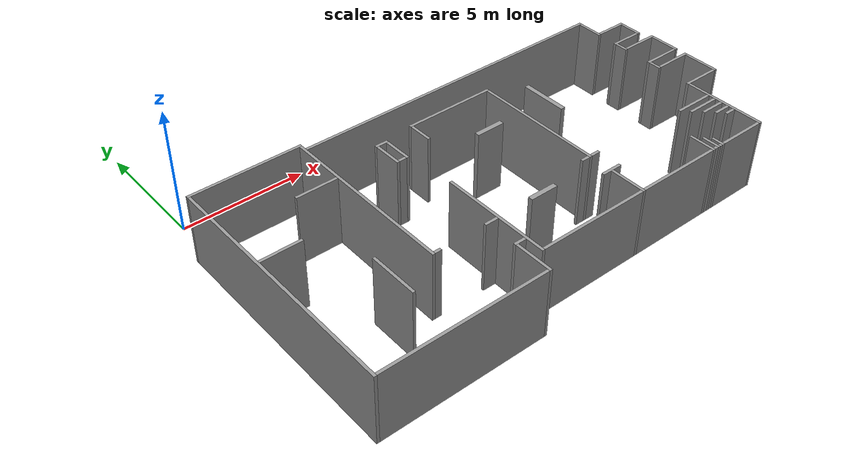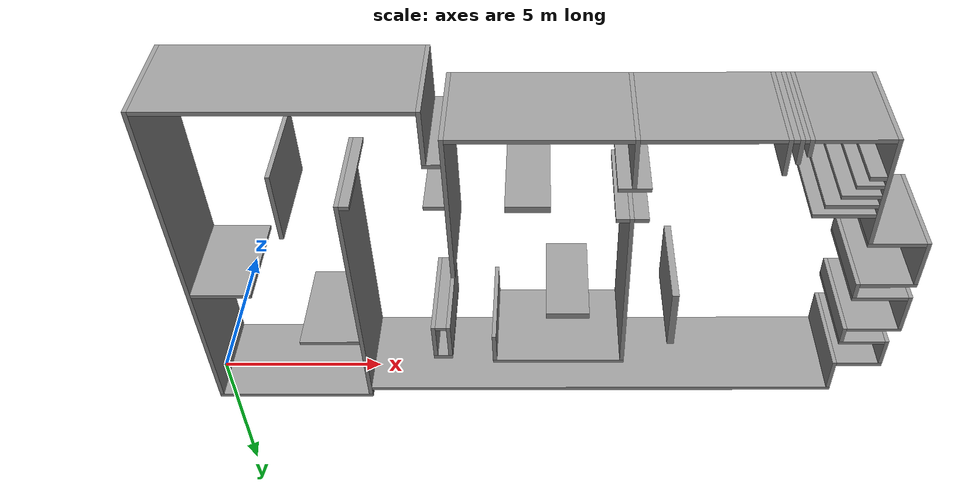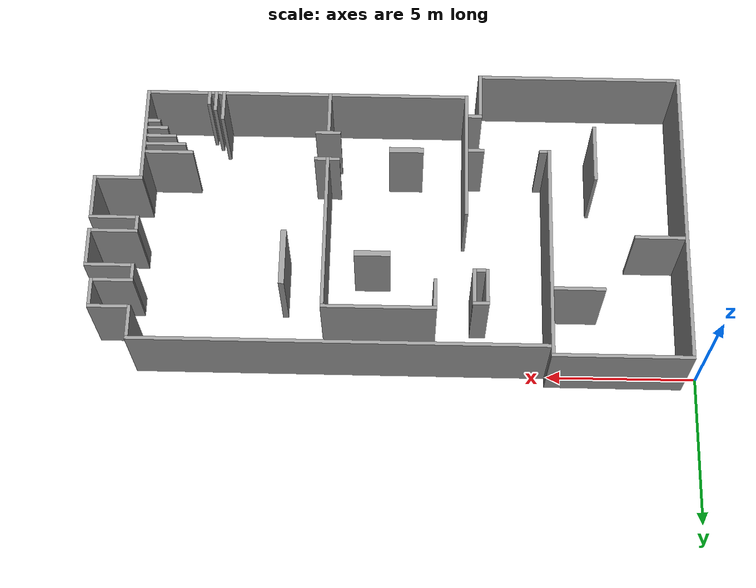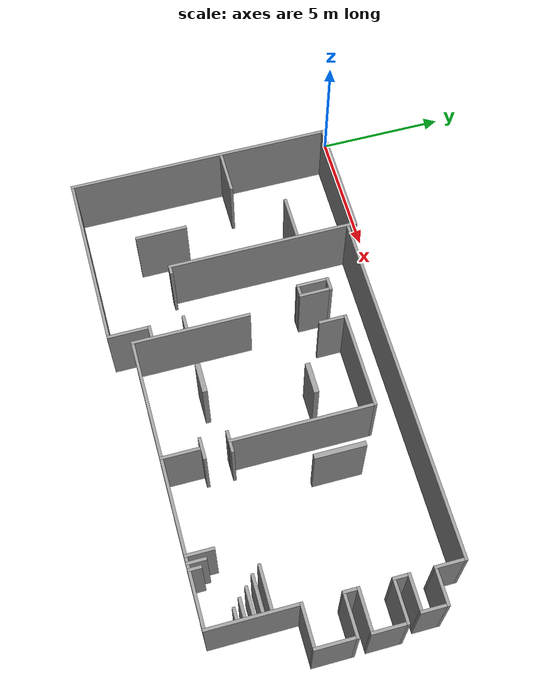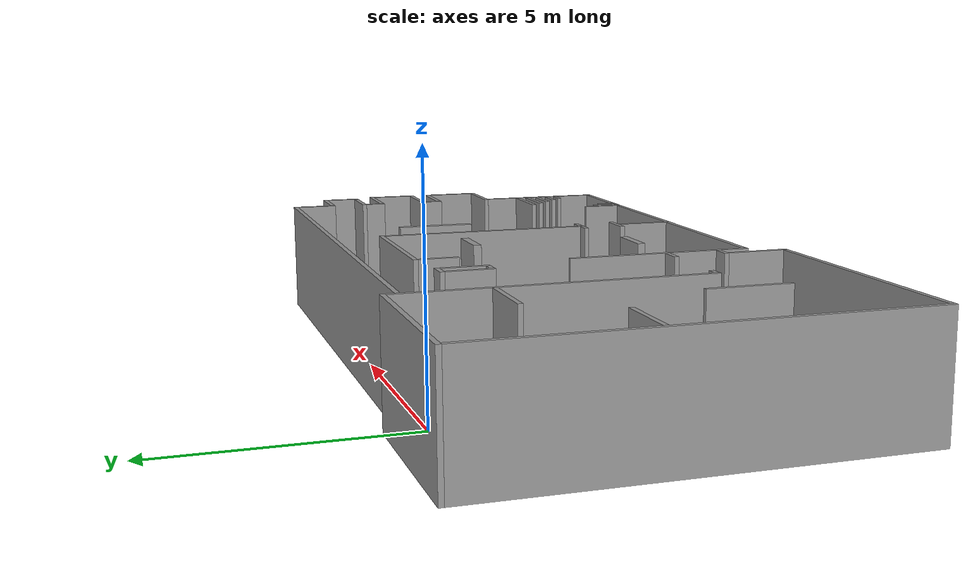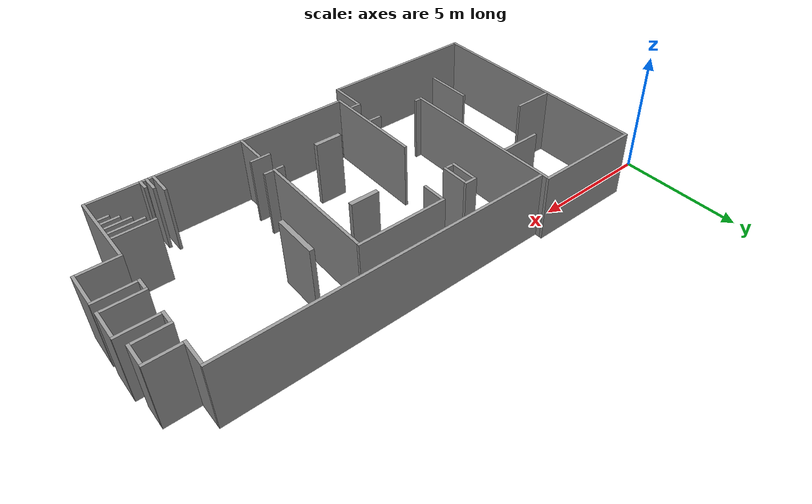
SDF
<?xml version="1.0" ?>
<sdf version="1.4">
  <model name="TestingRoom">
    <static>1</static>
    <link name="Wall_0">
      <collision name="Wall_0_Collision">
        <geometry>
          <box>
            <size>4.76000 0.12000 3.00000</size>
          </box>
        </geometry>
        <pose>2.58000 -0.26000 0 0 0 0.00000</pose>
      </collision>
      <visual name="Wall_0_Visual">
        <geometry>
          <box>
            <size>4.76000 0.12000 3.00000</size>
          </box>
        </geometry>
        <material>
          <script>
            <uri>file://media/materials/scripts/gazebo.material</uri>
            <name>Gazebo/Grey</name>
          </script>
        </material>
        <pose>2.58000 -0.26000 0 0 0 0.00000</pose>
      </visual>
    </link>
    <link name="Wall_1">
      <collision name="Wall_1_Collision">
        <geometry>
          <box>
            <size>0.12000 10.56000 3.00000</size>
          </box>
        </geometry>
        <pose>0.26000 -5.60000 0 0 0 0.00000</pose>
      </collision>
      <visual name="Wall_1_Visual">
        <geometry>
          <box>
            <size>0.12000 10.56000 3.00000</size>
          </box>
        </geometry>
        <material>
          <script>
            <uri>file://media/materials/scripts/gazebo.material</uri>
            <name>Gazebo/Grey</name>
          </script>
        </material>
        <pose>0.26000 -5.60000 0 0 0 0.00000</pose>
      </visual>
    </link>
    <link name="Wall_2">
      <collision name="Wall_2_Collision">
        <geometry>
          <box>
            <size>0.12000 7.60000 3.00000</size>
          </box>
        </geometry>
        <pose>4.90000 -4.12000 0 0 0 0.00000</pose>
      </collision>
      <visual name="Wall_2_Visual">
        <geometry>
          <box>
            <size>0.12000 7.60000 3.00000</size>
          </box>
        </geometry>
        <material>
          <script>
            <uri>file://media/materials/scripts/gazebo.material</uri>
            <name>Gazebo/Grey</name>
          </script>
        </material>
        <pose>4.90000 -4.12000 0 0 0 0.00000</pose>
      </visual>
    </link>
    <link name="Wall_3">
      <collision name="Wall_3_Collision">
        <geometry>
          <box>
            <size>14.16000 0.12000 3.00000</size>
          </box>
        </geometry>
        <pose>12.04000 -0.58000 0 0 0 0.00000</pose>
      </collision>
      <visual name="Wall_3_Visual">
        <geometry>
          <box>
            <size>14.16000 0.12000 3.00000</size>
          </box>
        </geometry>
        <material>
          <script>
            <uri>file://media/materials/scripts/gazebo.material</uri>
            <name>Gazebo/Grey</name>
          </script>
        </material>
        <pose>12.04000 -0.58000 0 0 0 0.00000</pose>
      </visual>
    </link>
    <link name="Wall_4">
      <collision name="Wall_4_Collision">
        <geometry>
          <box>
            <size>0.12000 1.12000 3.00000</size>
          </box>
        </geometry>
        <pose>19.06000 -1.20000 0 0 0 0.00000</pose>
      </collision>
      <visual name="Wall_4_Visual">
        <geometry>
          <box>
            <size>0.12000 1.12000 3.00000</size>
          </box>
        </geometry>
        <material>
          <script>
            <uri>file://media/materials/scripts/gazebo.material</uri>
            <name>Gazebo/Grey</name>
          </script>
        </material>
        <pose>19.06000 -1.20000 0 0 0 0.00000</pose>
      </visual>
    </link>
    <link name="Wall_5">
      <collision name="Wall_5_Collision">
        <geometry>
          <box>
            <size>1.36000 0.12000 3.00000</size>
          </box>
        </geometry>
        <pose>19.80000 -1.70000 0 0 0 0.00000</pose>
      </collision>
      <visual name="Wall_5_Visual">
        <geometry>
          <box>
            <size>1.36000 0.12000 3.00000</size>
          </box>
        </geometry>
        <material>
          <script>
            <uri>file://media/materials/scripts/gazebo.material</uri>
            <name>Gazebo/Grey</name>
          </script>
        </material>
        <pose>19.80000 -1.70000 0 0 0 0.00000</pose>
      </visual>
    </link>
    <link name="Wall_6">
      <collision name="Wall_6_Collision">
        <geometry>
          <box>
            <size>0.12000 0.96000 3.00000</size>
          </box>
        </geometry>
        <pose>20.42000 -2.24000 0 0 0 0.00000</pose>
      </collision>
      <visual name="Wall_6_Visual">
        <geometry>
          <box>
            <size>0.12000 0.96000 3.00000</size>
          </box>
        </geometry>
        <material>
          <script>
            <uri>file://media/materials/scripts/gazebo.material</uri>
            <name>Gazebo/Grey</name>
          </script>
        </material>
        <pose>20.42000 -2.24000 0 0 0 0.00000</pose>
      </visual>
    </link>
    <link name="Wall_7">
      <collision name="Wall_7_Collision">
        <geometry>
          <box>
            <size>3.92000 0.12000 3.00000</size>
          </box>
        </geometry>
        <pose>10.72000 -1.86000 0 0 0 0.00000</pose>
      </collision>
      <visual name="Wall_7_Visual">
        <geometry>
          <box>
            <size>3.92000 0.12000 3.00000</size>
          </box>
        </geometry>
        <material>
          <script>
            <uri>file://media/materials/scripts/gazebo.material</uri>
            <name>Gazebo/Grey</name>
          </script>
        </material>
        <pose>10.72000 -1.86000 0 0 0 0.00000</pose>
      </visual>
    </link>
    <link name="Wall_8">
      <collision name="Wall_8_Collision">
        <geometry>
          <box>
            <size>0.12000 1.00000 3.00000</size>
          </box>
        </geometry>
        <pose>8.82000 -2.42000 0 0 0 0.00000</pose>
      </collision>
      <visual name="Wall_8_Visual">
        <geometry>
          <box>
            <size>0.12000 1.00000 3.00000</size>
          </box>
        </geometry>
        <material>
          <script>
            <uri>file://media/materials/scripts/gazebo.material</uri>
            <name>Gazebo/Grey</name>
          </script>
        </material>
        <pose>8.82000 -2.42000 0 0 0 0.00000</pose>
      </visual>
    </link>
    <link name="Wall_9">
      <collision name="Wall_9_Collision">
        <geometry>
          <box>
            <size>0.12000 5.56000 3.00000</size>
          </box>
        </geometry>
        <pose>12.62000 -4.70000 0 0 0 0.00000</pose>
      </collision>
      <visual name="Wall_9_Visual">
        <geometry>
          <box>
            <size>0.12000 5.56000 3.00000</size>
          </box>
        </geometry>
        <material>
          <script>
            <uri>file://media/materials/scripts/gazebo.material</uri>
            <name>Gazebo/Grey</name>
          </script>
        </material>
        <pose>12.62000 -4.70000 0 0 0 0.00000</pose>
      </visual>
    </link>
    <link name="Wall_10">
      <collision name="Wall_10_Collision">
        <geometry>
          <box>
            <size>0.56000 0.12000 3.00000</size>
          </box>
        </geometry>
        <pose>7.28000 -2.06000 0 0 0 0.00000</pose>
      </collision>
      <visual name="Wall_10_Visual">
        <geometry>
          <box>
            <size>0.56000 0.12000 3.00000</size>
          </box>
        </geometry>
        <material>
          <script>
            <uri>file://media/materials/scripts/gazebo.material</uri>
            <name>Gazebo/Grey</name>
          </script>
        </material>
        <pose>7.28000 -2.06000 0 0 0 0.00000</pose>
      </visual>
    </link>
    <link name="Wall_11">
      <collision name="Wall_11_Collision">
        <geometry>
          <box>
            <size>0.12000 1.20000 3.00000</size>
          </box>
        </geometry>
        <pose>7.06000 -2.72000 0 0 0 0.00000</pose>
      </collision>
      <visual name="Wall_11_Visual">
        <geometry>
          <box>
            <size>0.12000 1.20000 3.00000</size>
          </box>
        </geometry>
        <material>
          <script>
            <uri>file://media/materials/scripts/gazebo.material</uri>
            <name>Gazebo/Grey</name>
          </script>
        </material>
        <pose>7.06000 -2.72000 0 0 0 0.00000</pose>
      </visual>
    </link>
    <link name="Wall_12">
      <collision name="Wall_12_Collision">
        <geometry>
          <box>
            <size>0.12000 1.20000 3.00000</size>
          </box>
        </geometry>
        <pose>7.50000 -2.72000 0 0 0 0.00000</pose>
      </collision>
      <visual name="Wall_12_Visual">
        <geometry>
          <box>
            <size>0.12000 1.20000 3.00000</size>
          </box>
        </geometry>
        <material>
          <script>
            <uri>file://media/materials/scripts/gazebo.material</uri>
            <name>Gazebo/Grey</name>
          </script>
        </material>
        <pose>7.50000 -2.72000 0 0 0 0.00000</pose>
      </visual>
    </link>
    <link name="Wall_13">
      <collision name="Wall_13_Collision">
        <geometry>
          <box>
            <size>1.76000 0.12000 3.00000</size>
          </box>
        </geometry>
        <pose>3.96000 -2.66000 0 0 0 0.00000</pose>
      </collision>
      <visual name="Wall_13_Visual">
        <geometry>
          <box>
            <size>1.76000 0.12000 3.00000</size>
          </box>
        </geometry>
        <material>
          <script>
            <uri>file://media/materials/scripts/gazebo.material</uri>
            <name>Gazebo/Grey</name>
          </script>
        </material>
        <pose>3.96000 -2.66000 0 0 0 0.00000</pose>
      </visual>
    </link>
    <link name="Wall_14">
      <collision name="Wall_14_Collision">
        <geometry>
          <box>
            <size>1.36000 0.12000 3.00000</size>
          </box>
        </geometry>
        <pose>19.68000 -2.66000 0 0 0 0.00000</pose>
      </collision>
      <visual name="Wall_14_Visual">
        <geometry>
          <box>
            <size>1.36000 0.12000 3.00000</size>
          </box>
        </geometry>
        <material>
          <script>
            <uri>file://media/materials/scripts/gazebo.material</uri>
            <name>Gazebo/Grey</name>
          </script>
        </material>
        <pose>19.68000 -2.66000 0 0 0 0.00000</pose>
      </visual>
    </link>
    <link name="Wall_15">
      <collision name="Wall_15_Collision">
        <geometry>
          <box>
            <size>0.20000 2.00000 3.00000</size>
          </box>
        </geometry>
        <pose>14.02000 -3.64000 0 0 0 0.00000</pose>
      </collision>
      <visual name="Wall_15_Visual">
        <geometry>
          <box>
            <size>0.20000 2.00000 3.00000</size>
          </box>
        </geometry>
        <material>
          <script>
            <uri>file://media/materials/scripts/gazebo.material</uri>
            <name>Gazebo/Grey</name>
          </script>
        </material>
        <pose>14.02000 -3.64000 0 0 0 0.00000</pose>
      </visual>
    </link>
    <link name="Wall_16">
      <collision name="Wall_16_Collision">
        <geometry>
          <box>
            <size>0.12000 0.56000 3.00000</size>
          </box>
        </geometry>
        <pose>19.06000 -3.00000 0 0 0 0.00000</pose>
      </collision>
      <visual name="Wall_16_Visual">
        <geometry>
          <box>
            <size>0.12000 0.56000 3.00000</size>
          </box>
        </geometry>
        <material>
          <script>
            <uri>file://media/materials/scripts/gazebo.material</uri>
            <name>Gazebo/Grey</name>
          </script>
        </material>
        <pose>19.06000 -3.00000 0 0 0 0.00000</pose>
      </visual>
    </link>
    <link name="Wall_17">
      <collision name="Wall_17_Collision">
        <geometry>
          <box>
            <size>1.60000 0.12000 3.00000</size>
          </box>
        </geometry>
        <pose>19.92000 -3.22000 0 0 0 0.00000</pose>
      </collision>
      <visual name="Wall_17_Visual">
        <geometry>
          <box>
            <size>1.60000 0.12000 3.00000</size>
          </box>
        </geometry>
        <material>
          <script>
            <uri>file://media/materials/scripts/gazebo.material</uri>
            <name>Gazebo/Grey</name>
          </script>
        </material>
        <pose>19.92000 -3.22000 0 0 0 0.00000</pose>
      </visual>
    </link>
    <link name="Wall_18">
      <collision name="Wall_18_Collision">
        <geometry>
          <box>
            <size>0.32000 0.12000 3.00000</size>
          </box>
        </geometry>
        <pose>7.28000 -3.26000 0 0 0 0.00000</pose>
      </collision>
      <visual name="Wall_18_Visual">
        <geometry>
          <box>
            <size>0.32000 0.12000 3.00000</size>
          </box>
        </geometry>
        <material>
          <script>
            <uri>file://media/materials/scripts/gazebo.material</uri>
            <name>Gazebo/Grey</name>
          </script>
        </material>
        <pose>7.28000 -3.26000 0 0 0 0.00000</pose>
      </visual>
    </link>
    <link name="Wall_19">
      <collision name="Wall_19_Collision">
        <geometry>
          <box>
            <size>0.12000 1.28000 3.00000</size>
          </box>
        </geometry>
        <pose>20.66000 -3.92000 0 0 0 0.00000</pose>
      </collision>
      <visual name="Wall_19_Visual">
        <geometry>
          <box>
            <size>0.12000 1.28000 3.00000</size>
          </box>
        </geometry>
        <material>
          <script>
            <uri>file://media/materials/scripts/gazebo.material</uri>
            <name>Gazebo/Grey</name>
          </script>
        </material>
        <pose>20.66000 -3.92000 0 0 0 0.00000</pose>
      </visual>
    </link>
    <link name="Wall_20">
      <collision name="Wall_20_Collision">
        <geometry>
          <box>
            <size>1.24000 0.20000 3.00000</size>
          </box>
        </geometry>
        <pose>10.98000 -3.82000 0 0 0 0.00000</pose>
      </collision>
      <visual name="Wall_20_Visual">
        <geometry>
          <box>
            <size>1.24000 0.20000 3.00000</size>
          </box>
        </geometry>
        <material>
          <script>
            <uri>file://media/materials/scripts/gazebo.material</uri>
            <name>Gazebo/Grey</name>
          </script>
        </material>
        <pose>10.98000 -3.82000 0 0 0 0.00000</pose>
      </visual>
    </link>
    <link name="Wall_21">
      <collision name="Wall_21_Collision">
        <geometry>
          <box>
            <size>1.60000 0.12000 3.00000</size>
          </box>
        </geometry>
        <pose>19.80000 -4.50000 0 0 0 0.00000</pose>
      </collision>
      <visual name="Wall_21_Visual">
        <geometry>
          <box>
            <size>1.60000 0.12000 3.00000</size>
          </box>
        </geometry>
        <material>
          <script>
            <uri>file://media/materials/scripts/gazebo.material</uri>
            <name>Gazebo/Grey</name>
          </script>
        </material>
        <pose>19.80000 -4.50000 0 0 0 0.00000</pose>
      </visual>
    </link>
    <link name="Wall_22">
      <collision name="Wall_22_Collision">
        <geometry>
          <box>
            <size>1.72000 0.12000 3.00000</size>
          </box>
        </geometry>
        <pose>1.18000 -4.62000 0 0 0 0.00000</pose>
      </collision>
      <visual name="Wall_22_Visual">
        <geometry>
          <box>
            <size>1.72000 0.12000 3.00000</size>
          </box>
        </geometry>
        <material>
          <script>
            <uri>file://media/materials/scripts/gazebo.material</uri>
            <name>Gazebo/Grey</name>
          </script>
        </material>
        <pose>1.18000 -4.62000 0 0 0 0.00000</pose>
      </visual>
    </link>
    <link name="Wall_23">
      <collision name="Wall_23_Collision">
        <geometry>
          <box>
            <size>0.12000 0.52000 3.00000</size>
          </box>
        </geometry>
        <pose>19.06000 -4.82000 0 0 0 0.00000</pose>
      </collision>
      <visual name="Wall_23_Visual">
        <geometry>
          <box>
            <size>0.12000 0.52000 3.00000</size>
          </box>
        </geometry>
        <material>
          <script>
            <uri>file://media/materials/scripts/gazebo.material</uri>
            <name>Gazebo/Grey</name>
          </script>
        </material>
        <pose>19.06000 -4.82000 0 0 0 0.00000</pose>
      </visual>
    </link>
    <link name="Wall_24">
      <collision name="Wall_24_Collision">
        <geometry>
          <box>
            <size>1.60000 0.12000 3.00000</size>
          </box>
        </geometry>
        <pose>19.92000 -5.02000 0 0 0 0.00000</pose>
      </collision>
      <visual name="Wall_24_Visual">
        <geometry>
          <box>
            <size>1.60000 0.12000 3.00000</size>
          </box>
        </geometry>
        <material>
          <script>
            <uri>file://media/materials/scripts/gazebo.material</uri>
            <name>Gazebo/Grey</name>
          </script>
        </material>
        <pose>19.92000 -5.02000 0 0 0 0.00000</pose>
      </visual>
    </link>
    <link name="Wall_25">
      <collision name="Wall_25_Collision">
        <geometry>
          <box>
            <size>0.12000 1.52000 3.00000</size>
          </box>
        </geometry>
        <pose>20.66000 -5.84000 0 0 0 0.00000</pose>
      </collision>
      <visual name="Wall_25_Visual">
        <geometry>
          <box>
            <size>0.12000 1.52000 3.00000</size>
          </box>
        </geometry>
        <material>
          <script>
            <uri>file://media/materials/scripts/gazebo.material</uri>
            <name>Gazebo/Grey</name>
          </script>
        </material>
        <pose>20.66000 -5.84000 0 0 0 0.00000</pose>
      </visual>
    </link>
    <link name="Wall_26">
      <collision name="Wall_26_Collision">
        <geometry>
          <box>
            <size>0.12000 4.68000 3.00000</size>
          </box>
        </geometry>
        <pose>7.78000 -7.70000 0 0 0 0.00000</pose>
      </collision>
      <visual name="Wall_26_Visual">
        <geometry>
          <box>
            <size>0.12000 4.68000 3.00000</size>
          </box>
        </geometry>
        <material>
          <script>
            <uri>file://media/materials/scripts/gazebo.material</uri>
            <name>Gazebo/Grey</name>
          </script>
        </material>
        <pose>7.78000 -7.70000 0 0 0 0.00000</pose>
      </visual>
    </link>
    <link name="Wall_27">
      <collision name="Wall_27_Collision">
        <geometry>
          <box>
            <size>1.60000 0.12000 3.00000</size>
          </box>
        </geometry>
        <pose>19.80000 -6.54000 0 0 0 0.00000</pose>
      </collision>
      <visual name="Wall_27_Visual">
        <geometry>
          <box>
            <size>1.60000 0.12000 3.00000</size>
          </box>
        </geometry>
        <material>
          <script>
            <uri>file://media/materials/scripts/gazebo.material</uri>
            <name>Gazebo/Grey</name>
          </script>
        </material>
        <pose>19.80000 -6.54000 0 0 0 0.00000</pose>
      </visual>
    </link>
    <link name="Wall_28">
      <collision name="Wall_28_Collision">
        <geometry>
          <box>
            <size>0.12000 3.44000 3.00000</size>
          </box>
        </geometry>
        <pose>19.06000 -8.32000 0 0 0 0.00000</pose>
      </collision>
      <visual name="Wall_28_Visual">
        <geometry>
          <box>
            <size>0.12000 3.44000 3.00000</size>
          </box>
        </geometry>
        <material>
          <script>
            <uri>file://media/materials/scripts/gazebo.material</uri>
            <name>Gazebo/Grey</name>
          </script>
        </material>
        <pose>19.06000 -8.32000 0 0 0 0.00000</pose>
      </visual>
    </link>
    <link name="Wall_29">
      <collision name="Wall_29_Collision">
        <geometry>
          <box>
            <size>0.12000 2.08000 3.00000</size>
          </box>
        </geometry>
        <pose>3.30000 -7.84000 0 0 0 0.00000</pose>
      </collision>
      <visual name="Wall_29_Visual">
        <geometry>
          <box>
            <size>0.12000 2.08000 3.00000</size>
          </box>
        </geometry>
        <material>
          <script>
            <uri>file://media/materials/scripts/gazebo.material</uri>
            <name>Gazebo/Grey</name>
          </script>
        </material>
        <pose>3.30000 -7.84000 0 0 0 0.00000</pose>
      </visual>
    </link>
    <link name="Wall_30">
      <collision name="Wall_30_Collision">
        <geometry>
          <box>
            <size>0.36000 0.12000 3.00000</size>
          </box>
        </geometry>
        <pose>12.38000 -7.42000 0 0 0 0.00000</pose>
      </collision>
      <visual name="Wall_30_Visual">
        <geometry>
          <box>
            <size>0.36000 0.12000 3.00000</size>
          </box>
        </geometry>
        <material>
          <script>
            <uri>file://media/materials/scripts/gazebo.material</uri>
            <name>Gazebo/Grey</name>
          </script>
        </material>
        <pose>12.38000 -7.42000 0 0 0 0.00000</pose>
      </visual>
    </link>
    <link name="Wall_31">
      <collision name="Wall_31_Collision">
        <geometry>
          <box>
            <size>0.40000 0.12000 3.00000</size>
          </box>
        </geometry>
        <pose>12.88000 -7.42000 0 0 0 0.00000</pose>
      </collision>
      <visual name="Wall_31_Visual">
        <geometry>
          <box>
            <size>0.40000 0.12000 3.00000</size>
          </box>
        </geometry>
        <material>
          <script>
            <uri>file://media/materials/scripts/gazebo.material</uri>
            <name>Gazebo/Grey</name>
          </script>
        </material>
        <pose>12.88000 -7.42000 0 0 0 0.00000</pose>
      </visual>
    </link>
    <link name="Wall_32">
      <collision name="Wall_32_Collision">
        <geometry>
          <box>
            <size>1.68000 0.12000 3.00000</size>
          </box>
        </geometry>
        <pose>18.16000 -7.58000 0 0 0 0.00000</pose>
      </collision>
      <visual name="Wall_32_Visual">
        <geometry>
          <box>
            <size>1.68000 0.12000 3.00000</size>
          </box>
        </geometry>
        <material>
          <script>
            <uri>file://media/materials/scripts/gazebo.material</uri>
            <name>Gazebo/Grey</name>
          </script>
        </material>
        <pose>18.16000 -7.58000 0 0 0 0.00000</pose>
      </visual>
    </link>
    <link name="Wall_33">
      <collision name="Wall_33_Collision">
        <geometry>
          <box>
            <size>1.20000 0.20000 3.00000</size>
          </box>
        </geometry>
        <pose>9.88000 -7.82000 0 0 0 0.00000</pose>
      </collision>
      <visual name="Wall_33_Visual">
        <geometry>
          <box>
            <size>1.20000 0.20000 3.00000</size>
          </box>
        </geometry>
        <material>
          <script>
            <uri>file://media/materials/scripts/gazebo.material</uri>
            <name>Gazebo/Grey</name>
          </script>
        </material>
        <pose>9.88000 -7.82000 0 0 0 0.00000</pose>
      </visual>
    </link>
    <link name="Wall_34">
      <collision name="Wall_34_Collision">
        <geometry>
          <box>
            <size>0.28000 0.12000 3.00000</size>
          </box>
        </geometry>
        <pose>5.10000 -7.86000 0 0 0 0.00000</pose>
      </collision>
      <visual name="Wall_34_Visual">
        <geometry>
          <box>
            <size>0.28000 0.12000 3.00000</size>
          </box>
        </geometry>
        <material>
          <script>
            <uri>file://media/materials/scripts/gazebo.material</uri>
            <name>Gazebo/Grey</name>
          </script>
        </material>
        <pose>5.10000 -7.86000 0 0 0 0.00000</pose>
      </visual>
    </link>
    <link name="Wall_35">
      <collision name="Wall_35_Collision">
        <geometry>
          <box>
            <size>0.56000 0.12000 3.00000</size>
          </box>
        </geometry>
        <pose>7.44000 -7.86000 0 0 0 0.00000</pose>
      </collision>
      <visual name="Wall_35_Visual">
        <geometry>
          <box>
            <size>0.56000 0.12000 3.00000</size>
          </box>
        </geometry>
        <material>
          <script>
            <uri>file://media/materials/scripts/gazebo.material</uri>
            <name>Gazebo/Grey</name>
          </script>
        </material>
        <pose>7.44000 -7.86000 0 0 0 0.00000</pose>
      </visual>
    </link>
    <link name="Wall_36">
      <collision name="Wall_36_Collision">
        <geometry>
          <box>
            <size>1.40000 0.12000 3.00000</size>
          </box>
        </geometry>
        <pose>18.30000 -7.90000 0 0 0 0.00000</pose>
      </collision>
      <visual name="Wall_36_Visual">
        <geometry>
          <box>
            <size>1.40000 0.12000 3.00000</size>
          </box>
        </geometry>
        <material>
          <script>
            <uri>file://media/materials/scripts/gazebo.material</uri>
            <name>Gazebo/Grey</name>
          </script>
        </material>
        <pose>18.30000 -7.90000 0 0 0 0.00000</pose>
      </visual>
    </link>
    <link name="Wall_37">
      <collision name="Wall_37_Collision">
        <geometry>
          <box>
            <size>1.04000 0.12000 3.00000</size>
          </box>
        </geometry>
        <pose>18.48000 -8.22000 0 0 0 0.00000</pose>
      </collision>
      <visual name="Wall_37_Visual">
        <geometry>
          <box>
            <size>1.04000 0.12000 3.00000</size>
          </box>
        </geometry>
        <material>
          <script>
            <uri>file://media/materials/scripts/gazebo.material</uri>
            <name>Gazebo/Grey</name>
          </script>
        </material>
        <pose>18.48000 -8.22000 0 0 0 0.00000</pose>
      </visual>
    </link>
    <link name="Wall_38">
      <collision name="Wall_38_Collision">
        <geometry>
          <box>
            <size>0.88000 0.12000 3.00000</size>
          </box>
        </geometry>
        <pose>12.64000 -8.46000 0 0 0 0.00000</pose>
      </collision>
      <visual name="Wall_38_Visual">
        <geometry>
          <box>
            <size>0.88000 0.12000 3.00000</size>
          </box>
        </geometry>
        <material>
          <script>
            <uri>file://media/materials/scripts/gazebo.material</uri>
            <name>Gazebo/Grey</name>
          </script>
        </material>
        <pose>12.64000 -8.46000 0 0 0 0.00000</pose>
      </visual>
    </link>
    <link name="Wall_39">
      <collision name="Wall_39_Collision">
        <geometry>
          <box>
            <size>0.72000 0.12000 3.00000</size>
          </box>
        </geometry>
        <pose>18.64000 -8.54000 0 0 0 0.00000</pose>
      </collision>
      <visual name="Wall_39_Visual">
        <geometry>
          <box>
            <size>0.72000 0.12000 3.00000</size>
          </box>
        </geometry>
        <material>
          <script>
            <uri>file://media/materials/scripts/gazebo.material</uri>
            <name>Gazebo/Grey</name>
          </script>
        </material>
        <pose>18.64000 -8.54000 0 0 0 0.00000</pose>
      </visual>
    </link>
    <link name="Wall_40">
      <collision name="Wall_40_Collision">
        <geometry>
          <box>
            <size>0.12000 1.52000 3.00000</size>
          </box>
        </geometry>
        <pose>12.62000 -9.28000 0 0 0 0.00000</pose>
      </collision>
      <visual name="Wall_40_Visual">
        <geometry>
          <box>
            <size>0.12000 1.52000 3.00000</size>
          </box>
        </geometry>
        <material>
          <script>
            <uri>file://media/materials/scripts/gazebo.material</uri>
            <name>Gazebo/Grey</name>
          </script>
        </material>
        <pose>12.62000 -9.28000 0 0 0 0.00000</pose>
      </visual>
    </link>
    <link name="Wall_41">
      <collision name="Wall_41_Collision">
        <geometry>
          <box>
            <size>0.44000 0.12000 3.00000</size>
          </box>
        </geometry>
        <pose>18.78000 -8.82000 0 0 0 0.00000</pose>
      </collision>
      <visual name="Wall_41_Visual">
        <geometry>
          <box>
            <size>0.44000 0.12000 3.00000</size>
          </box>
        </geometry>
        <material>
          <script>
            <uri>file://media/materials/scripts/gazebo.material</uri>
            <name>Gazebo/Grey</name>
          </script>
        </material>
        <pose>18.78000 -8.82000 0 0 0 0.00000</pose>
      </visual>
    </link>
    <link name="Wall_42">
      <collision name="Wall_42_Collision">
        <geometry>
          <box>
            <size>0.12000 1.12000 3.00000</size>
          </box>
        </geometry>
        <pose>16.38000 -9.48000 0 0 0 0.00000</pose>
      </collision>
      <visual name="Wall_42_Visual">
        <geometry>
          <box>
            <size>0.12000 1.12000 3.00000</size>
          </box>
        </geometry>
        <material>
          <script>
            <uri>file://media/materials/scripts/gazebo.material</uri>
            <name>Gazebo/Grey</name>
          </script>
        </material>
        <pose>16.38000 -9.48000 0 0 0 0.00000</pose>
      </visual>
    </link>
    <link name="Wall_43">
      <collision name="Wall_43_Collision">
        <geometry>
          <box>
            <size>0.48000 0.12000 3.00000</size>
          </box>
        </geometry>
        <pose>7.48000 -9.22000 0 0 0 0.00000</pose>
      </collision>
      <visual name="Wall_43_Visual">
        <geometry>
          <box>
            <size>0.48000 0.12000 3.00000</size>
          </box>
        </geometry>
        <material>
          <script>
            <uri>file://media/materials/scripts/gazebo.material</uri>
            <name>Gazebo/Grey</name>
          </script>
        </material>
        <pose>7.48000 -9.22000 0 0 0 0.00000</pose>
      </visual>
    </link>
    <link name="Wall_44">
      <collision name="Wall_44_Collision">
        <geometry>
          <box>
            <size>0.12000 1.60000 3.00000</size>
          </box>
        </geometry>
        <pose>7.30000 -10.08000 0 0 0 0.00000</pose>
      </collision>
      <visual name="Wall_44_Visual">
        <geometry>
          <box>
            <size>0.12000 1.60000 3.00000</size>
          </box>
        </geometry>
        <material>
          <script>
            <uri>file://media/materials/scripts/gazebo.material</uri>
            <name>Gazebo/Grey</name>
          </script>
        </material>
        <pose>7.30000 -10.08000 0 0 0 0.00000</pose>
      </visual>
    </link>
    <link name="Wall_45">
      <collision name="Wall_45_Collision">
        <geometry>
          <box>
            <size>0.12000 0.76000 3.00000</size>
          </box>
        </geometry>
        <pose>16.66000 -9.66000 0 0 0 0.00000</pose>
      </collision>
      <visual name="Wall_45_Visual">
        <geometry>
          <box>
            <size>0.12000 0.76000 3.00000</size>
          </box>
        </geometry>
        <material>
          <script>
            <uri>file://media/materials/scripts/gazebo.material</uri>
            <name>Gazebo/Grey</name>
          </script>
        </material>
        <pose>16.66000 -9.66000 0 0 0 0.00000</pose>
      </visual>
    </link>
    <link name="Wall_46">
      <collision name="Wall_46_Collision">
        <geometry>
          <box>
            <size>0.12000 0.52000 3.00000</size>
          </box>
        </geometry>
        <pose>16.90000 -9.78000 0 0 0 0.00000</pose>
      </collision>
      <visual name="Wall_46_Visual">
        <geometry>
          <box>
            <size>0.12000 0.52000 3.00000</size>
          </box>
        </geometry>
        <material>
          <script>
            <uri>file://media/materials/scripts/gazebo.material</uri>
            <name>Gazebo/Grey</name>
          </script>
        </material>
        <pose>16.90000 -9.78000 0 0 0 0.00000</pose>
      </visual>
    </link>
    <link name="Wall_47">
      <collision name="Wall_47_Collision">
        <geometry>
          <box>
            <size>4.72000 0.12000 3.00000</size>
          </box>
        </geometry>
        <pose>10.20000 -9.98000 0 0 0 0.00000</pose>
      </collision>
      <visual name="Wall_47_Visual">
        <geometry>
          <box>
            <size>4.72000 0.12000 3.00000</size>
          </box>
        </geometry>
        <material>
          <script>
            <uri>file://media/materials/scripts/gazebo.material</uri>
            <name>Gazebo/Grey</name>
          </script>
        </material>
        <pose>10.20000 -9.98000 0 0 0 0.00000</pose>
      </visual>
    </link>
    <link name="Wall_48">
      <collision name="Wall_48_Collision">
        <geometry>
          <box>
            <size>3.64000 0.12000 3.00000</size>
          </box>
        </geometry>
        <pose>14.50000 -9.98000 0 0 0 0.00000</pose>
      </collision>
      <visual name="Wall_48_Visual">
        <geometry>
          <box>
            <size>3.64000 0.12000 3.00000</size>
          </box>
        </geometry>
        <material>
          <script>
            <uri>file://media/materials/scripts/gazebo.material</uri>
            <name>Gazebo/Grey</name>
          </script>
        </material>
        <pose>14.50000 -9.98000 0 0 0 0.00000</pose>
      </visual>
    </link>
    <link name="Wall_49">
      <collision name="Wall_49_Collision">
        <geometry>
          <box>
            <size>0.16000 0.12000 3.00000</size>
          </box>
        </geometry>
        <pose>16.52000 -9.98000 0 0 0 0.00000</pose>
      </collision>
      <visual name="Wall_49_Visual">
        <geometry>
          <box>
            <size>0.16000 0.12000 3.00000</size>
          </box>
        </geometry>
        <material>
          <script>
            <uri>file://media/materials/scripts/gazebo.material</uri>
            <name>Gazebo/Grey</name>
          </script>
        </material>
        <pose>16.52000 -9.98000 0 0 0 0.00000</pose>
      </visual>
    </link>
    <link name="Wall_50">
      <collision name="Wall_50_Collision">
        <geometry>
          <box>
            <size>0.12000 0.12000 3.00000</size>
          </box>
        </geometry>
        <pose>16.78000 -9.98000 0 0 0 0.00000</pose>
      </collision>
      <visual name="Wall_50_Visual">
        <geometry>
          <box>
            <size>0.12000 0.12000 3.00000</size>
          </box>
        </geometry>
        <material>
          <script>
            <uri>file://media/materials/scripts/gazebo.material</uri>
            <name>Gazebo/Grey</name>
          </script>
        </material>
        <pose>16.78000 -9.98000 0 0 0 0.00000</pose>
      </visual>
    </link>
    <link name="Wall_51">
      <collision name="Wall_51_Collision">
        <geometry>
          <box>
            <size>2.04000 0.12000 3.00000</size>
          </box>
        </geometry>
        <pose>17.98000 -9.98000 0 0 0 0.00000</pose>
      </collision>
      <visual name="Wall_51_Visual">
        <geometry>
          <box>
            <size>2.04000 0.12000 3.00000</size>
          </box>
        </geometry>
        <material>
          <script>
            <uri>file://media/materials/scripts/gazebo.material</uri>
            <name>Gazebo/Grey</name>
          </script>
        </material>
        <pose>17.98000 -9.98000 0 0 0 0.00000</pose>
      </visual>
    </link>
    <link name="Wall_52">
      <collision name="Wall_52_Collision">
        <geometry>
          <box>
            <size>6.92000 0.12000 3.00000</size>
          </box>
        </geometry>
        <pose>3.78000 -10.82000 0 0 0 0.00000</pose>
      </collision>
      <visual name="Wall_52_Visual">
        <geometry>
          <box>
            <size>6.92000 0.12000 3.00000</size>
          </box>
        </geometry>
        <material>
          <script>
            <uri>file://media/materials/scripts/gazebo.material</uri>
            <name>Gazebo/Grey</name>
          </script>
        </material>
        <pose>3.78000 -10.82000 0 0 0 0.00000</pose>
      </visual>
    </link>
  </model>
</sdf>
